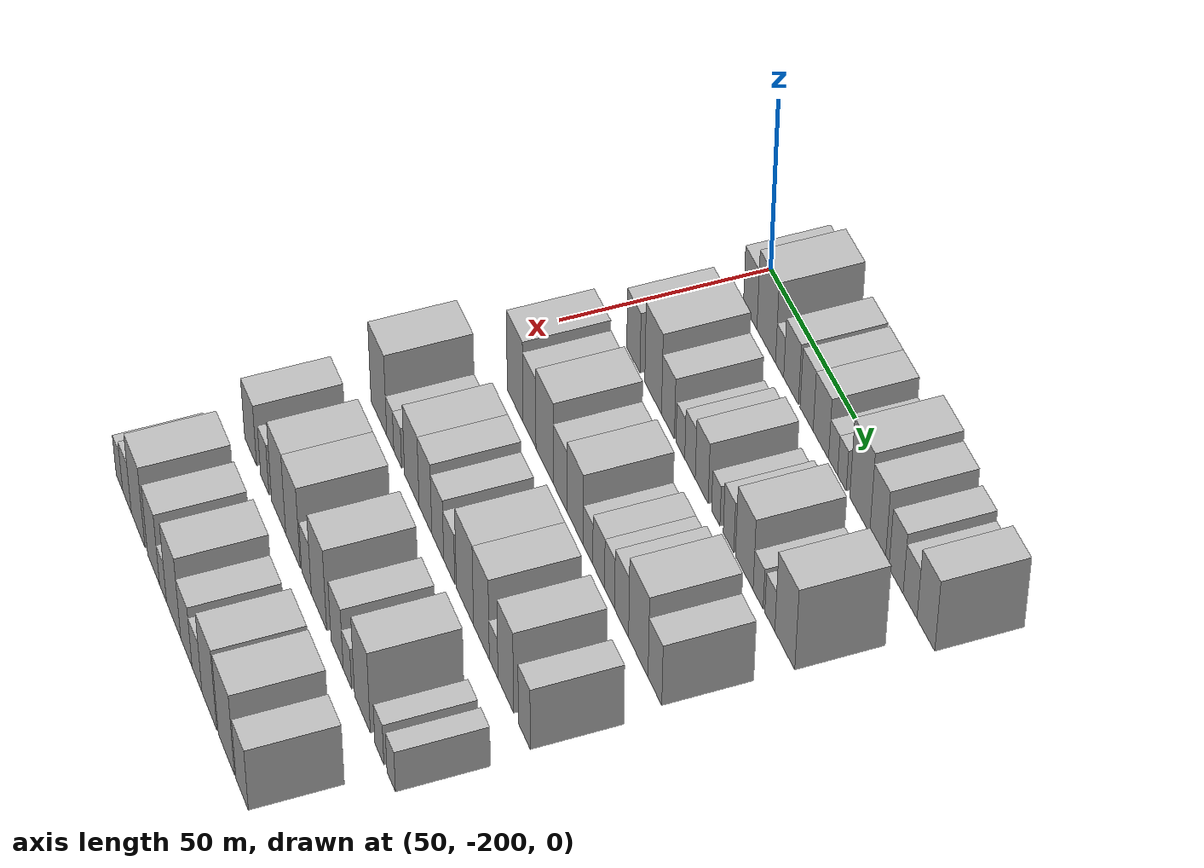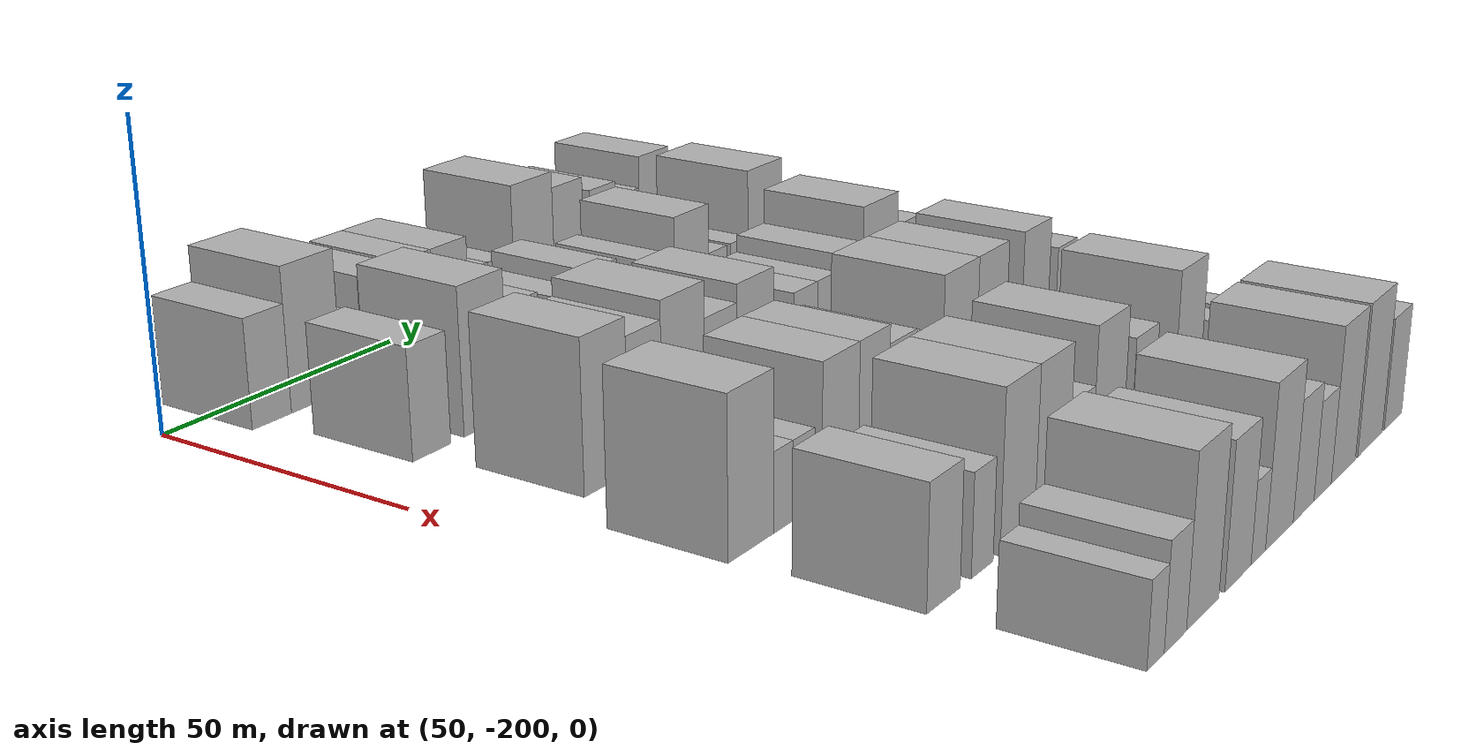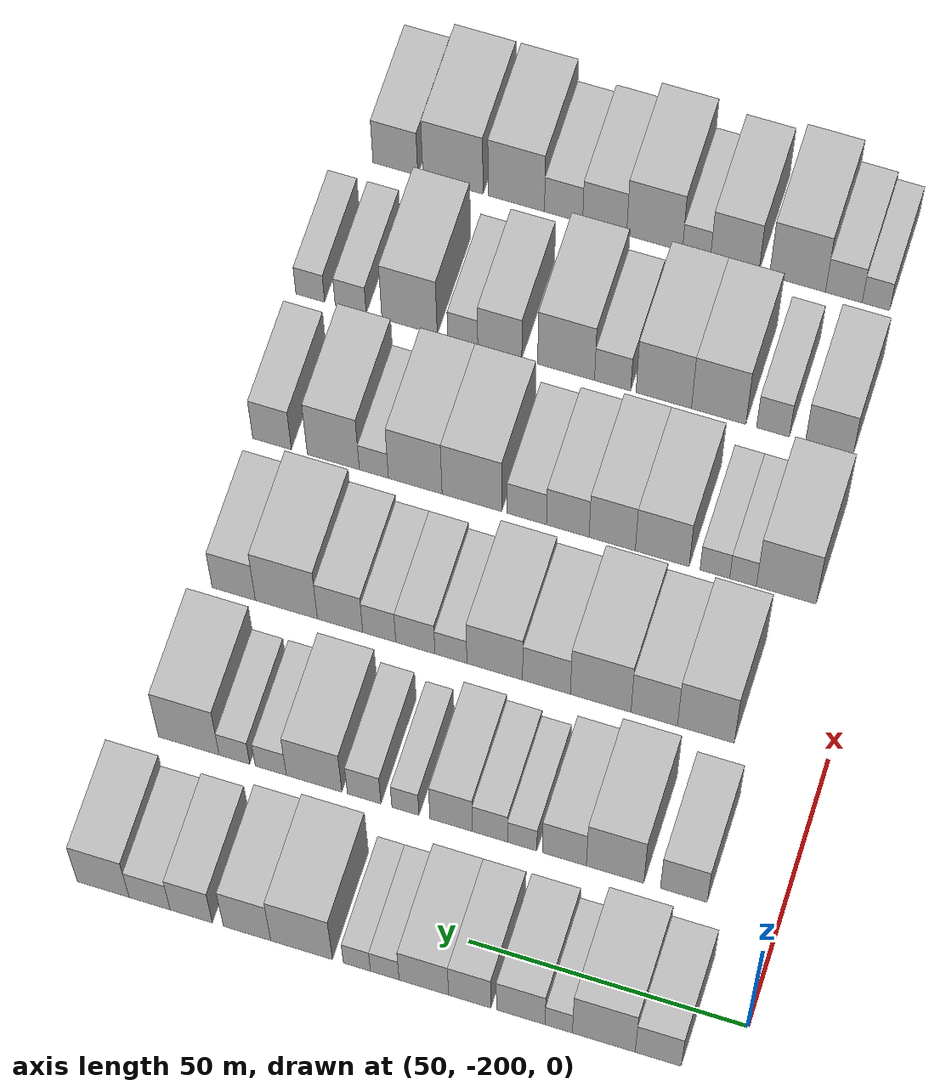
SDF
<sdf version="1.6">
 <world name="default">
  <model name="building_35">
   <static>1</static>
   <pose>50.0000 -187.0116 0 0.000000 0.000000 0.000000</pose>
   <link name="link">
    <pose>0 0 9.00 0 0 0</pose>
    <collision name="collision"><geometry><box><size>20.0000 8.2099 18.0000</size></box></geometry></collision>
    <visual name="visual">
     <cast_shadows>0</cast_shadows>
     <geometry><box><size>20.0000 8.2099 18.0000</size></box></geometry>
     <material>
      <script>
       <uri>model://HANNAS_wall/materials/scripts</uri>
       <uri>model://HANNAS_wall/materials/textures</uri>
       <name>vrc/HANNAS_wall</name>
      </script>
     </material>
    </visual>
   </link>
  </model>
  <model name="building_36">
   <static>1</static>
   <pose>50.0000 -177.3087 0 0.000000 0.000000 0.000000</pose>
   <link name="link">
    <pose>0 0 12.00 0 0 0</pose>
    <collision name="collision"><geometry><box><size>20.0000 11.1958 24.0000</size></box></geometry></collision>
    <visual name="visual">
     <cast_shadows>0</cast_shadows>
     <geometry><box><size>20.0000 11.1958 24.0000</size></box></geometry>
     <material>
      <script>
       <uri>model://HANNAS_wall/materials/scripts</uri>
       <uri>model://HANNAS_wall/materials/textures</uri>
       <name>vrc/HANNAS_wall</name>
      </script>
     </material>
    </visual>
   </link>
  </model>
  <model name="building_37">
   <static>1</static>
   <pose>50.0000 -169.2720 0 0.000000 0.000000 0.000000</pose>
   <link name="link">
    <pose>0 0 6.00 0 0 0</pose>
    <collision name="collision"><geometry><box><size>20.0000 4.8776 12.0000</size></box></geometry></collision>
    <visual name="visual">
     <cast_shadows>0</cast_shadows>
     <geometry><box><size>20.0000 4.8776 12.0000</size></box></geometry>
     <material>
      <script>
       <uri>model://HANNAS_wall/materials/scripts</uri>
       <uri>model://HANNAS_wall/materials/textures</uri>
       <name>vrc/HANNAS_wall</name>
      </script>
     </material>
    </visual>
   </link>
  </model>
  <model name="building_38">
   <static>1</static>
   <pose>50.0000 -162.4852 0 0.000000 0.000000 0.000000</pose>
   <link name="link">
    <pose>0 0 9.00 0 0 0</pose>
    <collision name="collision"><geometry><box><size>20.0000 8.6959 18.0000</size></box></geometry></collision>
    <visual name="visual">
     <cast_shadows>0</cast_shadows>
     <geometry><box><size>20.0000 8.6959 18.0000</size></box></geometry>
     <material>
      <script>
       <uri>model://HANNAS_wall/materials/scripts</uri>
       <uri>model://HANNAS_wall/materials/textures</uri>
       <name>vrc/HANNAS_wall</name>
      </script>
     </material>
    </visual>
   </link>
  </model>
  <model name="building_39">
   <static>1</static>
   <pose>50.0000 -153.3412 0 0.000000 0.000000 0.000000</pose>
   <link name="link">
    <pose>0 0 9.00 0 0 0</pose>
    <collision name="collision"><geometry><box><size>20.0000 7.5921 18.0000</size></box></geometry></collision>
    <visual name="visual">
     <cast_shadows>0</cast_shadows>
     <geometry><box><size>20.0000 7.5921 18.0000</size></box></geometry>
     <material>
      <script>
       <uri>model://HANNAS_wall/materials/scripts</uri>
       <uri>model://HANNAS_wall/materials/textures</uri>
       <name>vrc/HANNAS_wall</name>
      </script>
     </material>
    </visual>
   </link>
  </model>
  <model name="building_40">
   <static>1</static>
   <pose>50.0000 -145.0955 0 0.000000 0.000000 0.000000</pose>
   <link name="link">
    <pose>0 0 9.00 0 0 0</pose>
    <collision name="collision"><geometry><box><size>20.0000 8.8993 18.0000</size></box></geometry></collision>
    <visual name="visual">
     <cast_shadows>0</cast_shadows>
     <geometry><box><size>20.0000 8.8993 18.0000</size></box></geometry>
     <material>
      <script>
       <uri>model://HANNAS_wall/materials/scripts</uri>
       <uri>model://HANNAS_wall/materials/textures</uri>
       <name>vrc/HANNAS_wall</name>
      </script>
     </material>
    </visual>
   </link>
  </model>
  <model name="building_41">
   <static>1</static>
   <pose>50.0000 -138.0604 0 0.000000 0.000000 0.000000</pose>
   <link name="link">
    <pose>0 0 6.00 0 0 0</pose>
    <collision name="collision"><geometry><box><size>20.0000 5.1710 12.0000</size></box></geometry></collision>
    <visual name="visual">
     <cast_shadows>0</cast_shadows>
     <geometry><box><size>20.0000 5.1710 12.0000</size></box></geometry>
     <material>
      <script>
       <uri>model://HANNAS_wall/materials/scripts</uri>
       <uri>model://HANNAS_wall/materials/textures</uri>
       <name>vrc/HANNAS_wall</name>
      </script>
     </material>
    </visual>
   </link>
  </model>
  <model name="building_42">
   <static>1</static>
   <pose>50.0000 -133.0396 0 0.000000 0.000000 0.000000</pose>
   <link name="link">
    <pose>0 0 6.00 0 0 0</pose>
    <collision name="collision"><geometry><box><size>20.0000 4.8706 12.0000</size></box></geometry></collision>
    <visual name="visual">
     <cast_shadows>0</cast_shadows>
     <geometry><box><size>20.0000 4.8706 12.0000</size></box></geometry>
     <material>
      <script>
       <uri>model://HANNAS_wall/materials/scripts</uri>
       <uri>model://HANNAS_wall/materials/textures</uri>
       <name>vrc/HANNAS_wall</name>
      </script>
     </material>
    </visual>
   </link>
  </model>
  <model name="building_43">
   <static>1</static>
   <pose>50.0000 -123.0273 0 0.000000 0.000000 0.000000</pose>
   <link name="link">
    <pose>0 0 12.00 0 0 0</pose>
    <collision name="collision"><geometry><box><size>20.0000 11.1539 24.0000</size></box></geometry></collision>
    <visual name="visual">
     <cast_shadows>0</cast_shadows>
     <geometry><box><size>20.0000 11.1539 24.0000</size></box></geometry>
     <material>
      <script>
       <uri>model://HANNAS_wall/materials/scripts</uri>
       <uri>model://HANNAS_wall/materials/textures</uri>
       <name>vrc/HANNAS_wall</name>
      </script>
     </material>
    </visual>
   </link>
  </model>
  <model name="building_44">
   <static>1</static>
   <pose>50.0000 -113.1561 0 0.000000 0.000000 0.000000</pose>
   <link name="link">
    <pose>0 0 10.50 0 0 0</pose>
    <collision name="collision"><geometry><box><size>20.0000 8.5886 21.0000</size></box></geometry></collision>
    <visual name="visual">
     <cast_shadows>0</cast_shadows>
     <geometry><box><size>20.0000 8.5886 21.0000</size></box></geometry>
     <material>
      <script>
       <uri>model://HANNAS_wall/materials/scripts</uri>
       <uri>model://HANNAS_wall/materials/textures</uri>
       <name>vrc/HANNAS_wall</name>
      </script>
     </material>
    </visual>
   </link>
  </model>
  <model name="building_45">
   <static>1</static>
   <pose>50.0000 -103.0229 0 0.000000 0.000000 0.000000</pose>
   <link name="link">
    <pose>0 0 9.00 0 0 0</pose>
    <collision name="collision"><geometry><box><size>20.0000 7.6777 18.0000</size></box></geometry></collision>
    <visual name="visual">
     <cast_shadows>0</cast_shadows>
     <geometry><box><size>20.0000 7.6777 18.0000</size></box></geometry>
     <material>
      <script>
       <uri>model://HANNAS_wall/materials/scripts</uri>
       <uri>model://HANNAS_wall/materials/textures</uri>
       <name>vrc/HANNAS_wall</name>
      </script>
     </material>
    </visual>
   </link>
  </model>
  <model name="building_46">
   <static>1</static>
   <pose>50.0000 -95.4468 0 0.000000 0.000000 0.000000</pose>
   <link name="link">
    <pose>0 0 7.50 0 0 0</pose>
    <collision name="collision"><geometry><box><size>20.0000 7.4744 15.0000</size></box></geometry></collision>
    <visual name="visual">
     <cast_shadows>0</cast_shadows>
     <geometry><box><size>20.0000 7.4744 15.0000</size></box></geometry>
     <material>
      <script>
       <uri>model://HANNAS_wall/materials/scripts</uri>
       <uri>model://HANNAS_wall/materials/textures</uri>
       <name>vrc/HANNAS_wall</name>
      </script>
     </material>
    </visual>
   </link>
  </model>
  <model name="building_47">
   <static>1</static>
   <pose>50.0000 -86.9775 0 0.000000 0.000000 0.000000</pose>
   <link name="link">
    <pose>0 0 10.50 0 0 0</pose>
    <collision name="collision"><geometry><box><size>20.0000 9.4643 21.0000</size></box></geometry></collision>
    <visual name="visual">
     <cast_shadows>0</cast_shadows>
     <geometry><box><size>20.0000 9.4643 21.0000</size></box></geometry>
     <material>
      <script>
       <uri>model://HANNAS_wall/materials/scripts</uri>
       <uri>model://HANNAS_wall/materials/textures</uri>
       <name>vrc/HANNAS_wall</name>
      </script>
     </material>
    </visual>
   </link>
  </model>
  <model name="building_148">
   <static>1</static>
   <pose>79.0000 -182.8905 0 0.000000 0.000000 0.000000</pose>
   <link name="link">
    <pose>0 0 9.00 0 0 0</pose>
    <collision name="collision"><geometry><box><size>20.0000 8.4109 18.0000</size></box></geometry></collision>
    <visual name="visual">
     <cast_shadows>0</cast_shadows>
     <geometry><box><size>20.0000 8.4109 18.0000</size></box></geometry>
     <material>
      <script>
       <uri>model://HANNAS_wall/materials/scripts</uri>
       <uri>model://HANNAS_wall/materials/textures</uri>
       <name>vrc/HANNAS_wall</name>
      </script>
     </material>
    </visual>
   </link>
  </model>
  <model name="building_149">
   <static>1</static>
   <pose>79.0000 -170.4833 0 0.000000 0.000000 0.000000</pose>
   <link name="link">
    <pose>0 0 12.00 0 0 0</pose>
    <collision name="collision"><geometry><box><size>20.0000 10.4036 24.0000</size></box></geometry></collision>
    <visual name="visual">
     <cast_shadows>0</cast_shadows>
     <geometry><box><size>20.0000 10.4036 24.0000</size></box></geometry>
     <material>
      <script>
       <uri>model://HANNAS_wall/materials/scripts</uri>
       <uri>model://HANNAS_wall/materials/textures</uri>
       <name>vrc/HANNAS_wall</name>
      </script>
     </material>
    </visual>
   </link>
  </model>
  <model name="building_150">
   <static>1</static>
   <pose>79.0000 -161.3096 0 0.000000 0.000000 0.000000</pose>
   <link name="link">
    <pose>0 0 9.00 0 0 0</pose>
    <collision name="collision"><geometry><box><size>20.0000 7.9438 18.0000</size></box></geometry></collision>
    <visual name="visual">
     <cast_shadows>0</cast_shadows>
     <geometry><box><size>20.0000 7.9438 18.0000</size></box></geometry>
     <material>
      <script>
       <uri>model://HANNAS_wall/materials/scripts</uri>
       <uri>model://HANNAS_wall/materials/textures</uri>
       <name>vrc/HANNAS_wall</name>
      </script>
     </material>
    </visual>
   </link>
  </model>
  <model name="building_151">
   <static>1</static>
   <pose>79.0000 -153.6676 0 0.000000 0.000000 0.000000</pose>
   <link name="link">
    <pose>0 0 6.00 0 0 0</pose>
    <collision name="collision"><geometry><box><size>20.0000 5.3401 12.0000</size></box></geometry></collision>
    <visual name="visual">
     <cast_shadows>0</cast_shadows>
     <geometry><box><size>20.0000 5.3401 12.0000</size></box></geometry>
     <material>
      <script>
       <uri>model://HANNAS_wall/materials/scripts</uri>
       <uri>model://HANNAS_wall/materials/textures</uri>
       <name>vrc/HANNAS_wall</name>
      </script>
     </material>
    </visual>
   </link>
  </model>
  <model name="building_152">
   <static>1</static>
   <pose>79.0000 -147.8236 0 0.000000 0.000000 0.000000</pose>
   <link name="link">
    <pose>0 0 7.50 0 0 0</pose>
    <collision name="collision"><geometry><box><size>20.0000 6.3480 15.0000</size></box></geometry></collision>
    <visual name="visual">
     <cast_shadows>0</cast_shadows>
     <geometry><box><size>20.0000 6.3480 15.0000</size></box></geometry>
     <material>
      <script>
       <uri>model://HANNAS_wall/materials/scripts</uri>
       <uri>model://HANNAS_wall/materials/textures</uri>
       <name>vrc/HANNAS_wall</name>
      </script>
     </material>
    </visual>
   </link>
  </model>
  <model name="building_153">
   <static>1</static>
   <pose>79.0000 -140.7801 0 0.000000 0.000000 0.000000</pose>
   <link name="link">
    <pose>0 0 9.00 0 0 0</pose>
    <collision name="collision"><geometry><box><size>20.0000 7.7390 18.0000</size></box></geometry></collision>
    <visual name="visual">
     <cast_shadows>0</cast_shadows>
     <geometry><box><size>20.0000 7.7390 18.0000</size></box></geometry>
     <material>
      <script>
       <uri>model://HANNAS_wall/materials/scripts</uri>
       <uri>model://HANNAS_wall/materials/textures</uri>
       <name>vrc/HANNAS_wall</name>
      </script>
     </material>
    </visual>
   </link>
  </model>
  <model name="building_154">
   <static>1</static>
   <pose>79.0000 -132.4318 0 0.000000 0.000000 0.000000</pose>
   <link name="link">
    <pose>0 0 6.00 0 0 0</pose>
    <collision name="collision"><geometry><box><size>20.0000 4.9576 12.0000</size></box></geometry></collision>
    <visual name="visual">
     <cast_shadows>0</cast_shadows>
     <geometry><box><size>20.0000 4.9576 12.0000</size></box></geometry>
     <material>
      <script>
       <uri>model://HANNAS_wall/materials/scripts</uri>
       <uri>model://HANNAS_wall/materials/textures</uri>
       <name>vrc/HANNAS_wall</name>
      </script>
     </material>
    </visual>
   </link>
  </model>
  <model name="building_155">
   <static>1</static>
   <pose>79.0000 -124.8890 0 0.000000 0.000000 0.000000</pose>
   <link name="link">
    <pose>0 0 7.50 0 0 0</pose>
    <collision name="collision"><geometry><box><size>20.0000 6.1279 15.0000</size></box></geometry></collision>
    <visual name="visual">
     <cast_shadows>0</cast_shadows>
     <geometry><box><size>20.0000 6.1279 15.0000</size></box></geometry>
     <material>
      <script>
       <uri>model://HANNAS_wall/materials/scripts</uri>
       <uri>model://HANNAS_wall/materials/textures</uri>
       <name>vrc/HANNAS_wall</name>
      </script>
     </material>
    </visual>
   </link>
  </model>
  <model name="building_156">
   <static>1</static>
   <pose>79.0000 -115.7261 0 0.000000 0.000000 0.000000</pose>
   <link name="link">
    <pose>0 0 10.50 0 0 0</pose>
    <collision name="collision"><geometry><box><size>20.0000 10.1979 21.0000</size></box></geometry></collision>
    <visual name="visual">
     <cast_shadows>0</cast_shadows>
     <geometry><box><size>20.0000 10.1979 21.0000</size></box></geometry>
     <material>
      <script>
       <uri>model://HANNAS_wall/materials/scripts</uri>
       <uri>model://HANNAS_wall/materials/textures</uri>
       <name>vrc/HANNAS_wall</name>
      </script>
     </material>
    </visual>
   </link>
  </model>
  <model name="building_157">
   <static>1</static>
   <pose>79.0000 -107.7711 0 0.000000 0.000000 0.000000</pose>
   <link name="link">
    <pose>0 0 6.00 0 0 0</pose>
    <collision name="collision"><geometry><box><size>20.0000 5.7121 12.0000</size></box></geometry></collision>
    <visual name="visual">
     <cast_shadows>0</cast_shadows>
     <geometry><box><size>20.0000 5.7121 12.0000</size></box></geometry>
     <material>
      <script>
       <uri>model://HANNAS_wall/materials/scripts</uri>
       <uri>model://HANNAS_wall/materials/textures</uri>
       <name>vrc/HANNAS_wall</name>
      </script>
     </material>
    </visual>
   </link>
  </model>
  <model name="building_158">
   <static>1</static>
   <pose>79.0000 -101.0985 0 0.000000 0.000000 0.000000</pose>
   <link name="link">
    <pose>0 0 6.00 0 0 0</pose>
    <collision name="collision"><geometry><box><size>20.0000 5.6331 12.0000</size></box></geometry></collision>
    <visual name="visual">
     <cast_shadows>0</cast_shadows>
     <geometry><box><size>20.0000 5.6331 12.0000</size></box></geometry>
     <material>
      <script>
       <uri>model://HANNAS_wall/materials/scripts</uri>
       <uri>model://HANNAS_wall/materials/textures</uri>
       <name>vrc/HANNAS_wall</name>
      </script>
     </material>
    </visual>
   </link>
  </model>
  <model name="building_159">
   <static>1</static>
   <pose>79.0000 -92.6958 0 0.000000 0.000000 0.000000</pose>
   <link name="link">
    <pose>0 0 12.00 0 0 0</pose>
    <collision name="collision"><geometry><box><size>20.0000 11.1722 24.0000</size></box></geometry></collision>
    <visual name="visual">
     <cast_shadows>0</cast_shadows>
     <geometry><box><size>20.0000 11.1722 24.0000</size></box></geometry>
     <material>
      <script>
       <uri>model://HANNAS_wall/materials/scripts</uri>
       <uri>model://HANNAS_wall/materials/textures</uri>
       <name>vrc/HANNAS_wall</name>
      </script>
     </material>
    </visual>
   </link>
  </model>
  <model name="building_268">
   <static>1</static>
   <pose>108.0000 -178.2295 0 0.000000 0.000000 0.000000</pose>
   <link name="link">
    <pose>0 0 12.00 0 0 0</pose>
    <collision name="collision"><geometry><box><size>20.0000 10.3782 24.0000</size></box></geometry></collision>
    <visual name="visual">
     <cast_shadows>0</cast_shadows>
     <geometry><box><size>20.0000 10.3782 24.0000</size></box></geometry>
     <material>
      <script>
       <uri>model://HANNAS_wall/materials/scripts</uri>
       <uri>model://HANNAS_wall/materials/textures</uri>
       <name>vrc/HANNAS_wall</name>
      </script>
     </material>
    </visual>
   </link>
  </model>
  <model name="building_269">
   <static>1</static>
   <pose>108.0000 -168.7989 0 0.000000 0.000000 0.000000</pose>
   <link name="link">
    <pose>0 0 10.50 0 0 0</pose>
    <collision name="collision"><geometry><box><size>20.0000 8.4829 21.0000</size></box></geometry></collision>
    <visual name="visual">
     <cast_shadows>0</cast_shadows>
     <geometry><box><size>20.0000 8.4829 21.0000</size></box></geometry>
     <material>
      <script>
       <uri>model://HANNAS_wall/materials/scripts</uri>
       <uri>model://HANNAS_wall/materials/textures</uri>
       <name>vrc/HANNAS_wall</name>
      </script>
     </material>
    </visual>
   </link>
  </model>
  <model name="building_270">
   <static>1</static>
   <pose>108.0000 -159.0065 0 0.000000 0.000000 0.000000</pose>
   <link name="link">
    <pose>0 0 12.00 0 0 0</pose>
    <collision name="collision"><geometry><box><size>20.0000 11.1020 24.0000</size></box></geometry></collision>
    <visual name="visual">
     <cast_shadows>0</cast_shadows>
     <geometry><box><size>20.0000 11.1020 24.0000</size></box></geometry>
     <material>
      <script>
       <uri>model://HANNAS_wall/materials/scripts</uri>
       <uri>model://HANNAS_wall/materials/textures</uri>
       <name>vrc/HANNAS_wall</name>
      </script>
     </material>
    </visual>
   </link>
  </model>
  <model name="building_271">
   <static>1</static>
   <pose>108.0000 -149.0666 0 0.000000 0.000000 0.000000</pose>
   <link name="link">
    <pose>0 0 9.00 0 0 0</pose>
    <collision name="collision"><geometry><box><size>20.0000 8.7778 18.0000</size></box></geometry></collision>
    <visual name="visual">
     <cast_shadows>0</cast_shadows>
     <geometry><box><size>20.0000 8.7778 18.0000</size></box></geometry>
     <material>
      <script>
       <uri>model://HANNAS_wall/materials/scripts</uri>
       <uri>model://HANNAS_wall/materials/textures</uri>
       <name>vrc/HANNAS_wall</name>
      </script>
     </material>
    </visual>
   </link>
  </model>
  <model name="building_272">
   <static>1</static>
   <pose>108.0000 -139.5581 0 0.000000 0.000000 0.000000</pose>
   <link name="link">
    <pose>0 0 10.50 0 0 0</pose>
    <collision name="collision"><geometry><box><size>20.0000 10.2393 21.0000</size></box></geometry></collision>
    <visual name="visual">
     <cast_shadows>0</cast_shadows>
     <geometry><box><size>20.0000 10.2393 21.0000</size></box></geometry>
     <material>
      <script>
       <uri>model://HANNAS_wall/materials/scripts</uri>
       <uri>model://HANNAS_wall/materials/textures</uri>
       <name>vrc/HANNAS_wall</name>
      </script>
     </material>
    </visual>
   </link>
  </model>
  <model name="building_273">
   <static>1</static>
   <pose>108.0000 -131.4854 0 0.000000 0.000000 0.000000</pose>
   <link name="link">
    <pose>0 0 6.00 0 0 0</pose>
    <collision name="collision"><geometry><box><size>20.0000 5.9061 12.0000</size></box></geometry></collision>
    <visual name="visual">
     <cast_shadows>0</cast_shadows>
     <geometry><box><size>20.0000 5.9061 12.0000</size></box></geometry>
     <material>
      <script>
       <uri>model://HANNAS_wall/materials/scripts</uri>
       <uri>model://HANNAS_wall/materials/textures</uri>
       <name>vrc/HANNAS_wall</name>
      </script>
     </material>
    </visual>
   </link>
  </model>
  <model name="building_274">
   <static>1</static>
   <pose>108.0000 -124.9109 0 0.000000 0.000000 0.000000</pose>
   <link name="link">
    <pose>0 0 7.50 0 0 0</pose>
    <collision name="collision"><geometry><box><size>20.0000 7.2428 15.0000</size></box></geometry></collision>
    <visual name="visual">
     <cast_shadows>0</cast_shadows>
     <geometry><box><size>20.0000 7.2428 15.0000</size></box></geometry>
     <material>
      <script>
       <uri>model://HANNAS_wall/materials/scripts</uri>
       <uri>model://HANNAS_wall/materials/textures</uri>
       <name>vrc/HANNAS_wall</name>
      </script>
     </material>
    </visual>
   </link>
  </model>
  <model name="building_275">
   <static>1</static>
   <pose>108.0000 -118.2334 0 0.000000 0.000000 0.000000</pose>
   <link name="link">
    <pose>0 0 7.50 0 0 0</pose>
    <collision name="collision"><geometry><box><size>20.0000 6.1122 15.0000</size></box></geometry></collision>
    <visual name="visual">
     <cast_shadows>0</cast_shadows>
     <geometry><box><size>20.0000 6.1122 15.0000</size></box></geometry>
     <material>
      <script>
       <uri>model://HANNAS_wall/materials/scripts</uri>
       <uri>model://HANNAS_wall/materials/textures</uri>
       <name>vrc/HANNAS_wall</name>
      </script>
     </material>
    </visual>
   </link>
  </model>
  <model name="building_276">
   <static>1</static>
   <pose>108.0000 -110.9717 0 0.000000 0.000000 0.000000</pose>
   <link name="link">
    <pose>0 0 9.00 0 0 0</pose>
    <collision name="collision"><geometry><box><size>20.0000 8.4113 18.0000</size></box></geometry></collision>
    <visual name="visual">
     <cast_shadows>0</cast_shadows>
     <geometry><box><size>20.0000 8.4113 18.0000</size></box></geometry>
     <material>
      <script>
       <uri>model://HANNAS_wall/materials/scripts</uri>
       <uri>model://HANNAS_wall/materials/textures</uri>
       <name>vrc/HANNAS_wall</name>
      </script>
     </material>
    </visual>
   </link>
  </model>
  <model name="building_277">
   <static>1</static>
   <pose>108.0000 -100.9916 0 0.000000 0.000000 0.000000</pose>
   <link name="link">
    <pose>0 0 12.00 0 0 0</pose>
    <collision name="collision"><geometry><box><size>20.0000 11.5488 24.0000</size></box></geometry></collision>
    <visual name="visual">
     <cast_shadows>0</cast_shadows>
     <geometry><box><size>20.0000 11.5488 24.0000</size></box></geometry>
     <material>
      <script>
       <uri>model://HANNAS_wall/materials/scripts</uri>
       <uri>model://HANNAS_wall/materials/textures</uri>
       <name>vrc/HANNAS_wall</name>
      </script>
     </material>
    </visual>
   </link>
  </model>
  <model name="building_278">
   <static>1</static>
   <pose>108.0000 -91.1925 0 0.000000 0.000000 0.000000</pose>
   <link name="link">
    <pose>0 0 9.00 0 0 0</pose>
    <collision name="collision"><geometry><box><size>20.0000 8.0494 18.0000</size></box></geometry></collision>
    <visual name="visual">
     <cast_shadows>0</cast_shadows>
     <geometry><box><size>20.0000 8.0494 18.0000</size></box></geometry>
     <material>
      <script>
       <uri>model://HANNAS_wall/materials/scripts</uri>
       <uri>model://HANNAS_wall/materials/textures</uri>
       <name>vrc/HANNAS_wall</name>
      </script>
     </material>
    </visual>
   </link>
  </model>
  <model name="building_380">
   <static>1</static>
   <pose>137.0000 -184.4314 0 0.000000 0.000000 0.000000</pose>
   <link name="link">
    <pose>0 0 12.00 0 0 0</pose>
    <collision name="collision"><geometry><box><size>20.0000 11.0161 24.0000</size></box></geometry></collision>
    <visual name="visual">
     <cast_shadows>0</cast_shadows>
     <geometry><box><size>20.0000 11.0161 24.0000</size></box></geometry>
     <material>
      <script>
       <uri>model://HANNAS_wall/materials/scripts</uri>
       <uri>model://HANNAS_wall/materials/textures</uri>
       <name>vrc/HANNAS_wall</name>
      </script>
     </material>
    </visual>
   </link>
  </model>
  <model name="building_381">
   <static>1</static>
   <pose>137.0000 -176.4632 0 0.000000 0.000000 0.000000</pose>
   <link name="link">
    <pose>0 0 6.00 0 0 0</pose>
    <collision name="collision"><geometry><box><size>20.0000 4.9203 12.0000</size></box></geometry></collision>
    <visual name="visual">
     <cast_shadows>0</cast_shadows>
     <geometry><box><size>20.0000 4.9203 12.0000</size></box></geometry>
     <material>
      <script>
       <uri>model://HANNAS_wall/materials/scripts</uri>
       <uri>model://HANNAS_wall/materials/textures</uri>
       <name>vrc/HANNAS_wall</name>
      </script>
     </material>
    </visual>
   </link>
  </model>
  <model name="building_382">
   <static>1</static>
   <pose>137.0000 -171.2724 0 0.000000 0.000000 0.000000</pose>
   <link name="link">
    <pose>0 0 6.00 0 0 0</pose>
    <collision name="collision"><geometry><box><size>20.0000 5.4612 12.0000</size></box></geometry></collision>
    <visual name="visual">
     <cast_shadows>0</cast_shadows>
     <geometry><box><size>20.0000 5.4612 12.0000</size></box></geometry>
     <material>
      <script>
       <uri>model://HANNAS_wall/materials/scripts</uri>
       <uri>model://HANNAS_wall/materials/textures</uri>
       <name>vrc/HANNAS_wall</name>
      </script>
     </material>
    </visual>
   </link>
  </model>
  <model name="building_383">
   <static>1</static>
   <pose>137.0000 -161.5500 0 0.000000 0.000000 0.000000</pose>
   <link name="link">
    <pose>0 0 10.50 0 0 0</pose>
    <collision name="collision"><geometry><box><size>20.0000 9.9835 21.0000</size></box></geometry></collision>
    <visual name="visual">
     <cast_shadows>0</cast_shadows>
     <geometry><box><size>20.0000 9.9835 21.0000</size></box></geometry>
     <material>
      <script>
       <uri>model://HANNAS_wall/materials/scripts</uri>
       <uri>model://HANNAS_wall/materials/textures</uri>
       <name>vrc/HANNAS_wall</name>
      </script>
     </material>
    </visual>
   </link>
  </model>
  <model name="building_384">
   <static>1</static>
   <pose>137.0000 -152.2651 0 0.000000 0.000000 0.000000</pose>
   <link name="link">
    <pose>0 0 10.50 0 0 0</pose>
    <collision name="collision"><geometry><box><size>20.0000 8.5863 21.0000</size></box></geometry></collision>
    <visual name="visual">
     <cast_shadows>0</cast_shadows>
     <geometry><box><size>20.0000 8.5863 21.0000</size></box></geometry>
     <material>
      <script>
       <uri>model://HANNAS_wall/materials/scripts</uri>
       <uri>model://HANNAS_wall/materials/textures</uri>
       <name>vrc/HANNAS_wall</name>
      </script>
     </material>
    </visual>
   </link>
  </model>
  <model name="building_385">
   <static>1</static>
   <pose>137.0000 -144.0159 0 0.000000 0.000000 0.000000</pose>
   <link name="link">
    <pose>0 0 9.00 0 0 0</pose>
    <collision name="collision"><geometry><box><size>20.0000 7.9121 18.0000</size></box></geometry></collision>
    <visual name="visual">
     <cast_shadows>0</cast_shadows>
     <geometry><box><size>20.0000 7.9121 18.0000</size></box></geometry>
     <material>
      <script>
       <uri>model://HANNAS_wall/materials/scripts</uri>
       <uri>model://HANNAS_wall/materials/textures</uri>
       <name>vrc/HANNAS_wall</name>
      </script>
     </material>
    </visual>
   </link>
  </model>
  <model name="building_386">
   <static>1</static>
   <pose>137.0000 -136.4050 0 0.000000 0.000000 0.000000</pose>
   <link name="link">
    <pose>0 0 7.50 0 0 0</pose>
    <collision name="collision"><geometry><box><size>20.0000 7.3097 15.0000</size></box></geometry></collision>
    <visual name="visual">
     <cast_shadows>0</cast_shadows>
     <geometry><box><size>20.0000 7.3097 15.0000</size></box></geometry>
     <material>
      <script>
       <uri>model://HANNAS_wall/materials/scripts</uri>
       <uri>model://HANNAS_wall/materials/textures</uri>
       <name>vrc/HANNAS_wall</name>
      </script>
     </material>
    </visual>
   </link>
  </model>
  <model name="building_387">
   <static>1</static>
   <pose>137.0000 -126.1695 0 0.000000 0.000000 0.000000</pose>
   <link name="link">
    <pose>0 0 12.00 0 0 0</pose>
    <collision name="collision"><geometry><box><size>20.0000 11.1613 24.0000</size></box></geometry></collision>
    <visual name="visual">
     <cast_shadows>0</cast_shadows>
     <geometry><box><size>20.0000 11.1613 24.0000</size></box></geometry>
     <material>
      <script>
       <uri>model://HANNAS_wall/materials/scripts</uri>
       <uri>model://HANNAS_wall/materials/textures</uri>
       <name>vrc/HANNAS_wall</name>
      </script>
     </material>
    </visual>
   </link>
  </model>
  <model name="building_388">
   <static>1</static>
   <pose>137.0000 -115.5624 0 0.000000 0.000000 0.000000</pose>
   <link name="link">
    <pose>0 0 12.00 0 0 0</pose>
    <collision name="collision"><geometry><box><size>20.0000 10.0529 24.0000</size></box></geometry></collision>
    <visual name="visual">
     <cast_shadows>0</cast_shadows>
     <geometry><box><size>20.0000 10.0529 24.0000</size></box></geometry>
     <material>
      <script>
       <uri>model://HANNAS_wall/materials/scripts</uri>
       <uri>model://HANNAS_wall/materials/textures</uri>
       <name>vrc/HANNAS_wall</name>
      </script>
     </material>
    </visual>
   </link>
  </model>
  <model name="building_389">
   <static>1</static>
   <pose>137.0000 -107.8095 0 0.000000 0.000000 0.000000</pose>
   <link name="link">
    <pose>0 0 6.00 0 0 0</pose>
    <collision name="collision"><geometry><box><size>20.0000 5.4529 12.0000</size></box></geometry></collision>
    <visual name="visual">
     <cast_shadows>0</cast_shadows>
     <geometry><box><size>20.0000 5.4529 12.0000</size></box></geometry>
     <material>
      <script>
       <uri>model://HANNAS_wall/materials/scripts</uri>
       <uri>model://HANNAS_wall/materials/textures</uri>
       <name>vrc/HANNAS_wall</name>
      </script>
     </material>
    </visual>
   </link>
  </model>
  <model name="building_390">
   <static>1</static>
   <pose>137.0000 -100.1904 0 0.000000 0.000000 0.000000</pose>
   <link name="link">
    <pose>0 0 12.00 0 0 0</pose>
    <collision name="collision"><geometry><box><size>20.0000 9.7853 24.0000</size></box></geometry></collision>
    <visual name="visual">
     <cast_shadows>0</cast_shadows>
     <geometry><box><size>20.0000 9.7853 24.0000</size></box></geometry>
     <material>
      <script>
       <uri>model://HANNAS_wall/materials/scripts</uri>
       <uri>model://HANNAS_wall/materials/textures</uri>
       <name>vrc/HANNAS_wall</name>
      </script>
     </material>
    </visual>
   </link>
  </model>
  <model name="building_391">
   <static>1</static>
   <pose>137.0000 -88.6573 0 0.000000 0.000000 0.000000</pose>
   <link name="link">
    <pose>0 0 9.00 0 0 0</pose>
    <collision name="collision"><geometry><box><size>20.0000 7.2808 18.0000</size></box></geometry></collision>
    <visual name="visual">
     <cast_shadows>0</cast_shadows>
     <geometry><box><size>20.0000 7.2808 18.0000</size></box></geometry>
     <material>
      <script>
       <uri>model://HANNAS_wall/materials/scripts</uri>
       <uri>model://HANNAS_wall/materials/textures</uri>
       <name>vrc/HANNAS_wall</name>
      </script>
     </material>
    </visual>
   </link>
  </model>
  <model name="building_502">
   <static>1</static>
   <pose>166.0000 -184.0280 0 0.000000 0.000000 0.000000</pose>
   <link name="link">
    <pose>0 0 9.00 0 0 0</pose>
    <collision name="collision"><geometry><box><size>20.0000 8.8647 18.0000</size></box></geometry></collision>
    <visual name="visual">
     <cast_shadows>0</cast_shadows>
     <geometry><box><size>20.0000 8.8647 18.0000</size></box></geometry>
     <material>
      <script>
       <uri>model://HANNAS_wall/materials/scripts</uri>
       <uri>model://HANNAS_wall/materials/textures</uri>
       <name>vrc/HANNAS_wall</name>
      </script>
     </material>
    </visual>
   </link>
  </model>
  <model name="building_503">
   <static>1</static>
   <pose>166.0000 -173.5360 0 0.000000 0.000000 0.000000</pose>
   <link name="link">
    <pose>0 0 7.50 0 0 0</pose>
    <collision name="collision"><geometry><box><size>20.0000 6.1193 15.0000</size></box></geometry></collision>
    <visual name="visual">
     <cast_shadows>0</cast_shadows>
     <geometry><box><size>20.0000 6.1193 15.0000</size></box></geometry>
     <material>
      <script>
       <uri>model://HANNAS_wall/materials/scripts</uri>
       <uri>model://HANNAS_wall/materials/textures</uri>
       <name>vrc/HANNAS_wall</name>
      </script>
     </material>
    </visual>
   </link>
  </model>
  <model name="building_504">
   <static>1</static>
   <pose>166.0000 -163.3809 0 0.000000 0.000000 0.000000</pose>
   <link name="link">
    <pose>0 0 12.00 0 0 0</pose>
    <collision name="collision"><geometry><box><size>20.0000 10.1909 24.0000</size></box></geometry></collision>
    <visual name="visual">
     <cast_shadows>0</cast_shadows>
     <geometry><box><size>20.0000 10.1909 24.0000</size></box></geometry>
     <material>
      <script>
       <uri>model://HANNAS_wall/materials/scripts</uri>
       <uri>model://HANNAS_wall/materials/textures</uri>
       <name>vrc/HANNAS_wall</name>
      </script>
     </material>
    </visual>
   </link>
  </model>
  <model name="building_505">
   <static>1</static>
   <pose>166.0000 -153.0899 0 0.000000 0.000000 0.000000</pose>
   <link name="link">
    <pose>0 0 12.00 0 0 0</pose>
    <collision name="collision"><geometry><box><size>20.0000 10.3911 24.0000</size></box></geometry></collision>
    <visual name="visual">
     <cast_shadows>0</cast_shadows>
     <geometry><box><size>20.0000 10.3911 24.0000</size></box></geometry>
     <material>
      <script>
       <uri>model://HANNAS_wall/materials/scripts</uri>
       <uri>model://HANNAS_wall/materials/textures</uri>
       <name>vrc/HANNAS_wall</name>
      </script>
     </material>
    </visual>
   </link>
  </model>
  <model name="building_506">
   <static>1</static>
   <pose>166.0000 -143.4997 0 0.000000 0.000000 0.000000</pose>
   <link name="link">
    <pose>0 0 7.50 0 0 0</pose>
    <collision name="collision"><geometry><box><size>20.0000 6.7892 15.0000</size></box></geometry></collision>
    <visual name="visual">
     <cast_shadows>0</cast_shadows>
     <geometry><box><size>20.0000 6.7892 15.0000</size></box></geometry>
     <material>
      <script>
       <uri>model://HANNAS_wall/materials/scripts</uri>
       <uri>model://HANNAS_wall/materials/textures</uri>
       <name>vrc/HANNAS_wall</name>
      </script>
     </material>
    </visual>
   </link>
  </model>
  <model name="building_507">
   <static>1</static>
   <pose>166.0000 -134.7515 0 0.000000 0.000000 0.000000</pose>
   <link name="link">
    <pose>0 0 12.00 0 0 0</pose>
    <collision name="collision"><geometry><box><size>20.0000 10.7073 24.0000</size></box></geometry></collision>
    <visual name="visual">
     <cast_shadows>0</cast_shadows>
     <geometry><box><size>20.0000 10.7073 24.0000</size></box></geometry>
     <material>
      <script>
       <uri>model://HANNAS_wall/materials/scripts</uri>
       <uri>model://HANNAS_wall/materials/textures</uri>
       <name>vrc/HANNAS_wall</name>
      </script>
     </material>
    </visual>
   </link>
  </model>
  <model name="building_508">
   <static>1</static>
   <pose>166.0000 -122.2392 0 0.000000 0.000000 0.000000</pose>
   <link name="link">
    <pose>0 0 9.00 0 0 0</pose>
    <collision name="collision"><geometry><box><size>20.0000 8.3173 18.0000</size></box></geometry></collision>
    <visual name="visual">
     <cast_shadows>0</cast_shadows>
     <geometry><box><size>20.0000 8.3173 18.0000</size></box></geometry>
     <material>
      <script>
       <uri>model://HANNAS_wall/materials/scripts</uri>
       <uri>model://HANNAS_wall/materials/textures</uri>
       <name>vrc/HANNAS_wall</name>
      </script>
     </material>
    </visual>
   </link>
  </model>
  <model name="building_509">
   <static>1</static>
   <pose>166.0000 -115.2474 0 0.000000 0.000000 0.000000</pose>
   <link name="link">
    <pose>0 0 6.00 0 0 0</pose>
    <collision name="collision"><geometry><box><size>20.0000 5.6664 12.0000</size></box></geometry></collision>
    <visual name="visual">
     <cast_shadows>0</cast_shadows>
     <geometry><box><size>20.0000 5.6664 12.0000</size></box></geometry>
     <material>
      <script>
       <uri>model://HANNAS_wall/materials/scripts</uri>
       <uri>model://HANNAS_wall/materials/textures</uri>
       <name>vrc/HANNAS_wall</name>
      </script>
     </material>
    </visual>
   </link>
  </model>
  <model name="building_510">
   <static>1</static>
   <pose>166.0000 -105.1659 0 0.000000 0.000000 0.000000</pose>
   <link name="link">
    <pose>0 0 12.00 0 0 0</pose>
    <collision name="collision"><geometry><box><size>20.0000 10.4964 24.0000</size></box></geometry></collision>
    <visual name="visual">
     <cast_shadows>0</cast_shadows>
     <geometry><box><size>20.0000 10.4964 24.0000</size></box></geometry>
     <material>
      <script>
       <uri>model://HANNAS_wall/materials/scripts</uri>
       <uri>model://HANNAS_wall/materials/textures</uri>
       <name>vrc/HANNAS_wall</name>
      </script>
     </material>
    </visual>
   </link>
  </model>
  <model name="building_511">
   <static>1</static>
   <pose>166.0000 -93.9648 0 0.000000 0.000000 0.000000</pose>
   <link name="link">
    <pose>0 0 6.00 0 0 0</pose>
    <collision name="collision"><geometry><box><size>20.0000 5.9058 12.0000</size></box></geometry></collision>
    <visual name="visual">
     <cast_shadows>0</cast_shadows>
     <geometry><box><size>20.0000 5.9058 12.0000</size></box></geometry>
     <material>
      <script>
       <uri>model://HANNAS_wall/materials/scripts</uri>
       <uri>model://HANNAS_wall/materials/textures</uri>
       <name>vrc/HANNAS_wall</name>
      </script>
     </material>
    </visual>
   </link>
  </model>
  <model name="building_512">
   <static>1</static>
   <pose>166.0000 -86.2749 0 0.000000 0.000000 0.000000</pose>
   <link name="link">
    <pose>0 0 6.00 0 0 0</pose>
    <collision name="collision"><geometry><box><size>20.0000 5.4741 12.0000</size></box></geometry></collision>
    <visual name="visual">
     <cast_shadows>0</cast_shadows>
     <geometry><box><size>20.0000 5.4741 12.0000</size></box></geometry>
     <material>
      <script>
       <uri>model://HANNAS_wall/materials/scripts</uri>
       <uri>model://HANNAS_wall/materials/textures</uri>
       <name>vrc/HANNAS_wall</name>
      </script>
     </material>
    </visual>
   </link>
  </model>
  <model name="building_620">
   <static>1</static>
   <pose>195.0000 -184.4733 0 0.000000 0.000000 0.000000</pose>
   <link name="link">
    <pose>0 0 6.00 0 0 0</pose>
    <collision name="collision"><geometry><box><size>20.0000 5.1688 12.0000</size></box></geometry></collision>
    <visual name="visual">
     <cast_shadows>0</cast_shadows>
     <geometry><box><size>20.0000 5.1688 12.0000</size></box></geometry>
     <material>
      <script>
       <uri>model://HANNAS_wall/materials/scripts</uri>
       <uri>model://HANNAS_wall/materials/textures</uri>
       <name>vrc/HANNAS_wall</name>
      </script>
     </material>
    </visual>
   </link>
  </model>
  <model name="building_621">
   <static>1</static>
   <pose>195.0000 -178.4323 0 0.000000 0.000000 0.000000</pose>
   <link name="link">
    <pose>0 0 7.50 0 0 0</pose>
    <collision name="collision"><geometry><box><size>20.0000 6.9132 15.0000</size></box></geometry></collision>
    <visual name="visual">
     <cast_shadows>0</cast_shadows>
     <geometry><box><size>20.0000 6.9132 15.0000</size></box></geometry>
     <material>
      <script>
       <uri>model://HANNAS_wall/materials/scripts</uri>
       <uri>model://HANNAS_wall/materials/textures</uri>
       <name>vrc/HANNAS_wall</name>
      </script>
     </material>
    </visual>
   </link>
  </model>
  <model name="building_622">
   <static>1</static>
   <pose>195.0000 -169.6857 0 0.000000 0.000000 0.000000</pose>
   <link name="link">
    <pose>0 0 12.00 0 0 0</pose>
    <collision name="collision"><geometry><box><size>20.0000 10.5802 24.0000</size></box></geometry></collision>
    <visual name="visual">
     <cast_shadows>0</cast_shadows>
     <geometry><box><size>20.0000 10.5802 24.0000</size></box></geometry>
     <material>
      <script>
       <uri>model://HANNAS_wall/materials/scripts</uri>
       <uri>model://HANNAS_wall/materials/textures</uri>
       <name>vrc/HANNAS_wall</name>
      </script>
     </material>
    </visual>
   </link>
  </model>
  <model name="building_623">
   <static>1</static>
   <pose>195.0000 -157.8075 0 0.000000 0.000000 0.000000</pose>
   <link name="link">
    <pose>0 0 10.50 0 0 0</pose>
    <collision name="collision"><geometry><box><size>20.0000 9.1762 21.0000</size></box></geometry></collision>
    <visual name="visual">
     <cast_shadows>0</cast_shadows>
     <geometry><box><size>20.0000 9.1762 21.0000</size></box></geometry>
     <material>
      <script>
       <uri>model://HANNAS_wall/materials/scripts</uri>
       <uri>model://HANNAS_wall/materials/textures</uri>
       <name>vrc/HANNAS_wall</name>
      </script>
     </material>
    </visual>
   </link>
  </model>
  <model name="building_624">
   <static>1</static>
   <pose>195.0000 -150.5658 0 0.000000 0.000000 0.000000</pose>
   <link name="link">
    <pose>0 0 6.00 0 0 0</pose>
    <collision name="collision"><geometry><box><size>20.0000 5.3073 12.0000</size></box></geometry></collision>
    <visual name="visual">
     <cast_shadows>0</cast_shadows>
     <geometry><box><size>20.0000 5.3073 12.0000</size></box></geometry>
     <material>
      <script>
       <uri>model://HANNAS_wall/materials/scripts</uri>
       <uri>model://HANNAS_wall/materials/textures</uri>
       <name>vrc/HANNAS_wall</name>
      </script>
     </material>
    </visual>
   </link>
  </model>
  <model name="building_625">
   <static>1</static>
   <pose>195.0000 -142.6074 0 0.000000 0.000000 0.000000</pose>
   <link name="link">
    <pose>0 0 12.00 0 0 0</pose>
    <collision name="collision"><geometry><box><size>20.0000 10.6094 24.0000</size></box></geometry></collision>
    <visual name="visual">
     <cast_shadows>0</cast_shadows>
     <geometry><box><size>20.0000 10.6094 24.0000</size></box></geometry>
     <material>
      <script>
       <uri>model://HANNAS_wall/materials/scripts</uri>
       <uri>model://HANNAS_wall/materials/textures</uri>
       <name>vrc/HANNAS_wall</name>
      </script>
     </material>
    </visual>
   </link>
  </model>
  <model name="building_626">
   <static>1</static>
   <pose>195.0000 -133.1201 0 0.000000 0.000000 0.000000</pose>
   <link name="link">
    <pose>0 0 9.00 0 0 0</pose>
    <collision name="collision"><geometry><box><size>20.0000 8.3652 18.0000</size></box></geometry></collision>
    <visual name="visual">
     <cast_shadows>0</cast_shadows>
     <geometry><box><size>20.0000 8.3652 18.0000</size></box></geometry>
     <material>
      <script>
       <uri>model://HANNAS_wall/materials/scripts</uri>
       <uri>model://HANNAS_wall/materials/textures</uri>
       <name>vrc/HANNAS_wall</name>
      </script>
     </material>
    </visual>
   </link>
  </model>
  <model name="building_627">
   <static>1</static>
   <pose>195.0000 -125.3033 0 0.000000 0.000000 0.000000</pose>
   <link name="link">
    <pose>0 0 7.50 0 0 0</pose>
    <collision name="collision"><geometry><box><size>20.0000 7.2684 15.0000</size></box></geometry></collision>
    <visual name="visual">
     <cast_shadows>0</cast_shadows>
     <geometry><box><size>20.0000 7.2684 15.0000</size></box></geometry>
     <material>
      <script>
       <uri>model://HANNAS_wall/materials/scripts</uri>
       <uri>model://HANNAS_wall/materials/textures</uri>
       <name>vrc/HANNAS_wall</name>
      </script>
     </material>
    </visual>
   </link>
  </model>
  <model name="building_628">
   <static>1</static>
   <pose>195.0000 -116.3031 0 0.000000 0.000000 0.000000</pose>
   <link name="link">
    <pose>0 0 12.00 0 0 0</pose>
    <collision name="collision"><geometry><box><size>20.0000 10.7320 24.0000</size></box></geometry></collision>
    <visual name="visual">
     <cast_shadows>0</cast_shadows>
     <geometry><box><size>20.0000 10.7320 24.0000</size></box></geometry>
     <material>
      <script>
       <uri>model://HANNAS_wall/materials/scripts</uri>
       <uri>model://HANNAS_wall/materials/textures</uri>
       <name>vrc/HANNAS_wall</name>
      </script>
     </material>
    </visual>
   </link>
  </model>
  <model name="building_629">
   <static>1</static>
   <pose>195.0000 -104.1706 0 0.000000 0.000000 0.000000</pose>
   <link name="link">
    <pose>0 0 12.00 0 0 0</pose>
    <collision name="collision"><geometry><box><size>20.0000 11.5331 24.0000</size></box></geometry></collision>
    <visual name="visual">
     <cast_shadows>0</cast_shadows>
     <geometry><box><size>20.0000 11.5331 24.0000</size></box></geometry>
     <material>
      <script>
       <uri>model://HANNAS_wall/materials/scripts</uri>
       <uri>model://HANNAS_wall/materials/textures</uri>
       <name>vrc/HANNAS_wall</name>
      </script>
     </material>
    </visual>
   </link>
  </model>
  <model name="building_630">
   <static>1</static>
   <pose>195.0000 -93.1014 0 0.000000 0.000000 0.000000</pose>
   <link name="link">
    <pose>0 0 9.00 0 0 0</pose>
    <collision name="collision"><geometry><box><size>20.0000 8.6053 18.0000</size></box></geometry></collision>
    <visual name="visual">
     <cast_shadows>0</cast_shadows>
     <geometry><box><size>20.0000 8.6053 18.0000</size></box></geometry>
     <material>
      <script>
       <uri>model://HANNAS_wall/materials/scripts</uri>
       <uri>model://HANNAS_wall/materials/textures</uri>
       <name>vrc/HANNAS_wall</name>
      </script>
     </material>
    </visual>
   </link>
  </model>
 </world>
</sdf>
